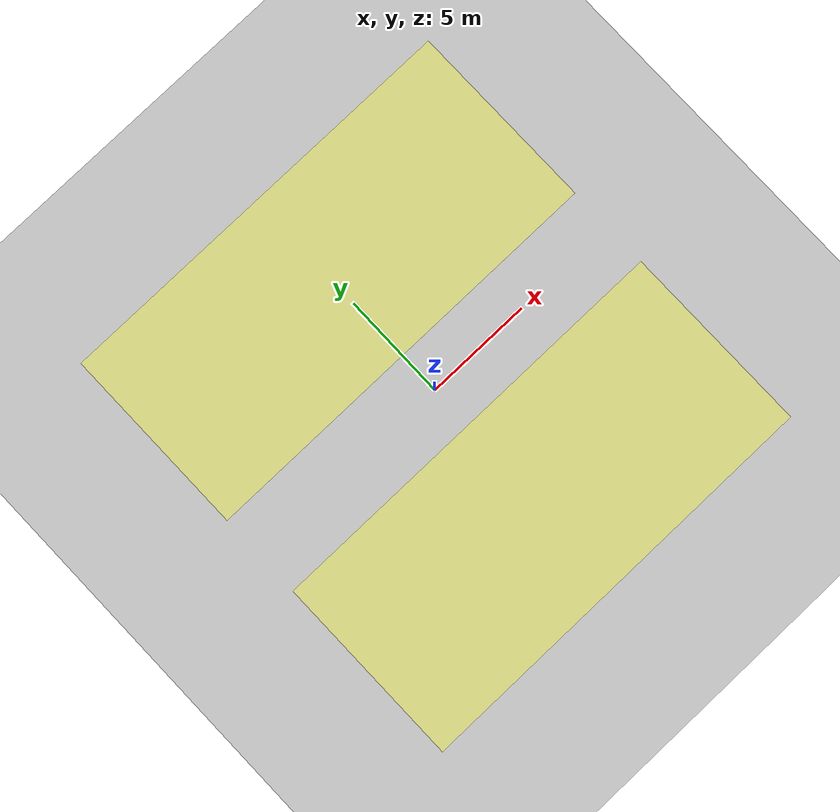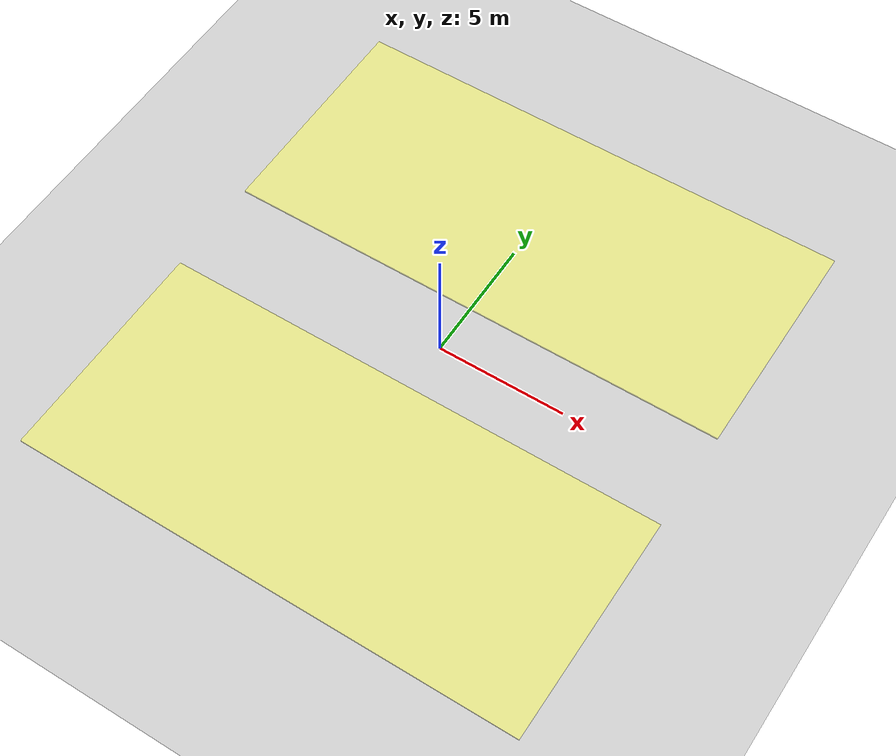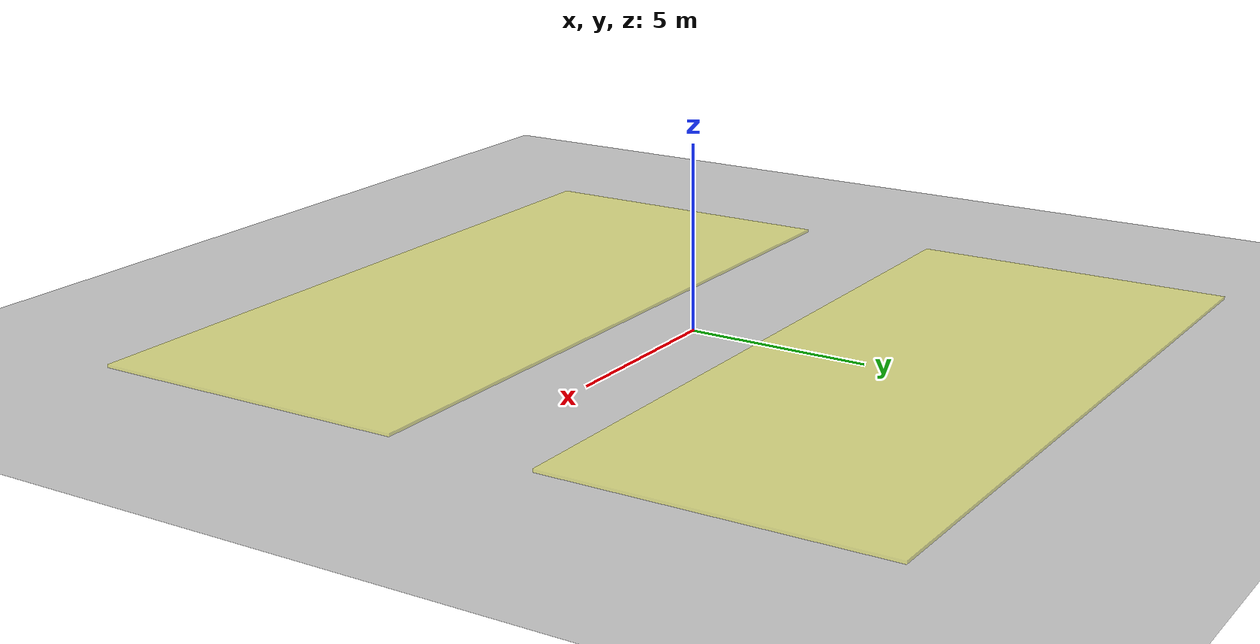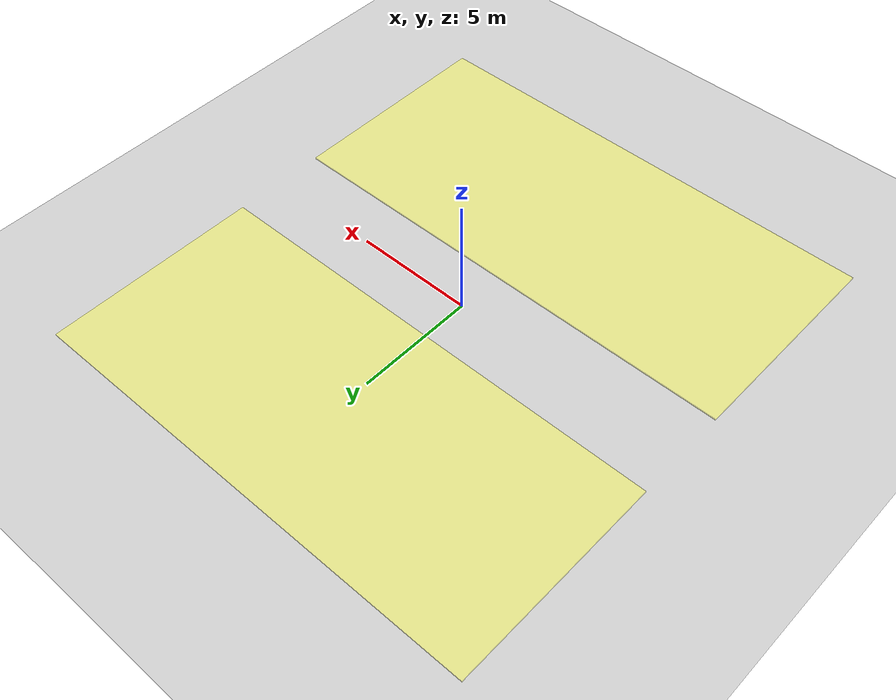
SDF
<?xml version="1.0" ?>
<sdf version="1.8">
    <world name="Moving_robot">
        <physics name="1ms" type="ignored">
            <max_step_size>[[STEP_SIZE]]</max_step_size>
            <real_time_factor>1.0</real_time_factor>
        </physics>
        <plugin
            filename="libignition-gazebo-physics-system.so"
            name="ignition::gazebo::systems::Physics">
        </plugin>
        <plugin
            filename="ignition-gazebo-user-commands-system"
            name="ignition::gazebo::systems::UserCommands">
        </plugin>
        <plugin
            filename="ignition-gazebo-scene-broadcaster-system"
            name="ignition::gazebo::systems::SceneBroadcaster">
        </plugin>

        <light type="directional" name="sun">
            <cast_shadows>true</cast_shadows>
            <pose>0 0 10 0 0 0</pose>
            <diffuse>0.8 0.8 0.8 1</diffuse>
            <specular>0.2 0.2 0.2 1</specular>
            <attenuation>
                <range>1000</range>
                <constant>0.9</constant>
                <linear>0.01</linear>
                <quadratic>0.001</quadratic>
            </attenuation>
            <direction>-0.5 0.1 -0.9</direction>
        </light>

        <model name="ground_plane">
            <static>true</static>
            <link name="link">
                <collision name="collision">
                <geometry>
                    <plane>
                    <normal>0 0 1</normal>
                    </plane>
                </geometry>
                </collision>
                <visual name="visual">
                <geometry>
                    <plane>
                    <normal>0 0 1</normal>
                    <size>100 100</size>
                    </plane>
                </geometry>

                <surface>
                  <contact>
          	      <collide_bitmask>0x01</collide_bitmask>
        	  </contact>
                </surface>

                <material>
                    <ambient>0.8 0.8 0.8 1</ambient>
                    <diffuse>0.8 0.8 0.8 1</diffuse>
                    <specular>0.8 0.8 0.8 1</specular>
                </material>
                </visual>
            </link>
        </model>

        <model name='plank_left'>
            <pose>0 6.5 0 0 0 0</pose>
            <link name='link_1'>
            <pose>0 0 0 0 -0 0</pose>
            <inertial>
                <mass>54.0001</mass>
                <inertia>
                <ixx>364.546</ixx>
                <ixy>0</ixy>
                <ixz>0</ixz>
                <iyy>1800.06</iyy>
                <iyz>0</iyz>
                <izz>2164.51</izz>
                </inertia>
                <pose>0 0 0 0 -0 0</pose>
            </inertial>
            <visual name='visual'>
                <geometry>
                <box>
                    <size>20 9 0.1</size>
                </box>
                </geometry>
                <material>
                <ambient>1 1 0.3 0.5</ambient>
                <diffuse>1 1 0.3 0.5</diffuse>
                <specular>1 1 0.3 0.5</specular>
                </material>
            </visual>
            <collision name='collision'>
                <geometry>
                <box>
                    <size>20 9 0.1</size>
                </box>
                </geometry>
                <surface>
                <friction>
                    <ode>
                    <mu>1</mu>
                    <mu2>1</mu2>
                    </ode>
                </friction>
                </surface>
            </collision>
            <enable_wind>false</enable_wind>
            </link>
            <static>0</static>
            <allow_auto_disable>1</allow_auto_disable>
        </model>

        <model name='plank_right'>
            <pose>0 -6.5 0 0 0 0</pose>
            <link name='link_1'>
            <pose>0 0 0 0 -0 0</pose>
            <inertial>
                <mass>54.0001</mass>
                <inertia>
                <ixx>364.546</ixx>
                <ixy>0</ixy>
                <ixz>0</ixz>
                <iyy>1800.06</iyy>
                <iyz>0</iyz>
                <izz>2164.51</izz>
                </inertia>
                <pose>0 0 0 0 -0 0</pose>
            </inertial>
            <visual name='visual'>
                <geometry>
                <box>
                    <size>20 9 0.1</size>
                </box>
                </geometry>
                <material>
                <ambient>1 1 0.3 0.5</ambient>
                <diffuse>1 1 0.3 0.5</diffuse>
                <specular>1 1 0.3 0.5</specular>
                </material>
            </visual>
            <collision name='collision'>
                <geometry>
                <box>
                    <size>20 9 0.1</size>
                </box>
                </geometry>
                <surface>
                <friction>
                    <ode>
                    <mu>1</mu>
                    <mu2>1</mu2>
                    </ode>
                </friction>
                </surface>
            </collision>
            <enable_wind>false</enable_wind>
            </link>
            <static>0</static>
            <allow_auto_disable>1</allow_auto_disable>
        </model>

    [[TILES]]

    [[CYLINDERS]]

    [[ROBOT]]

    </world>
</sdf>
